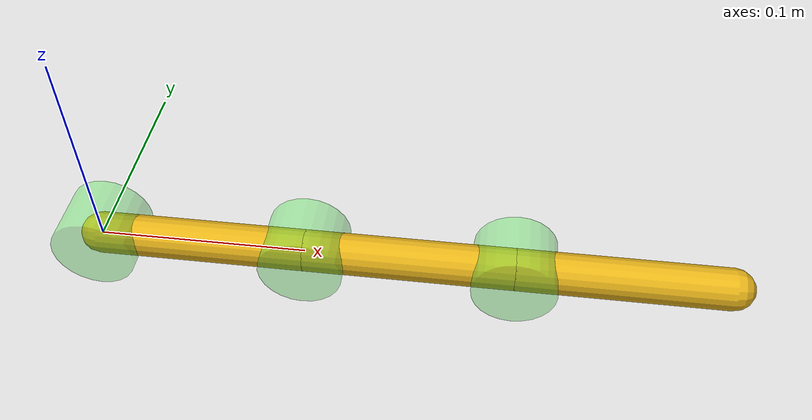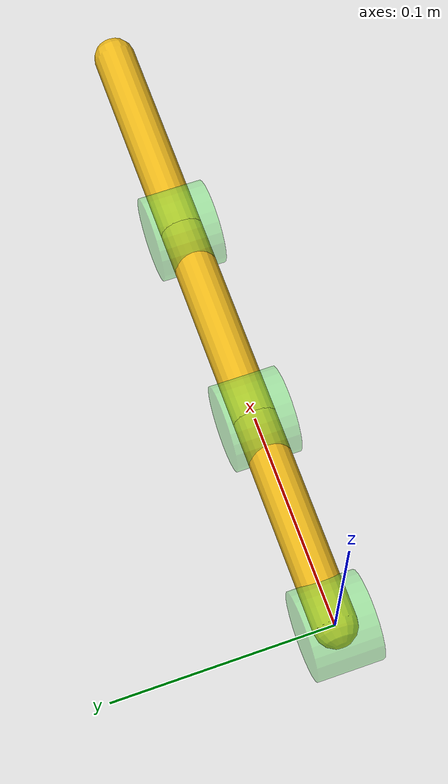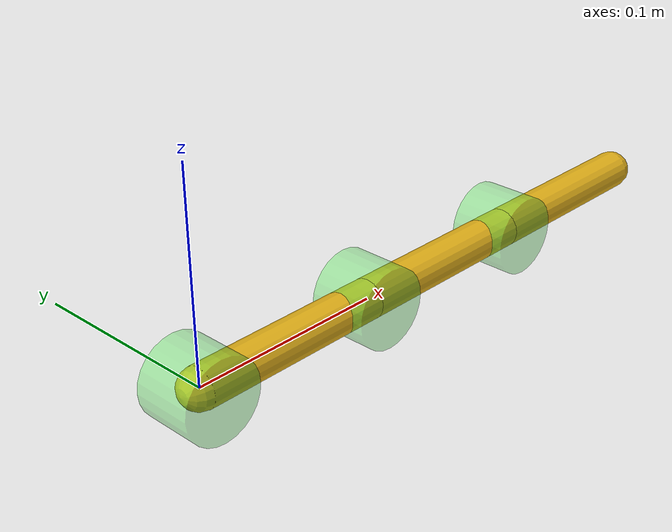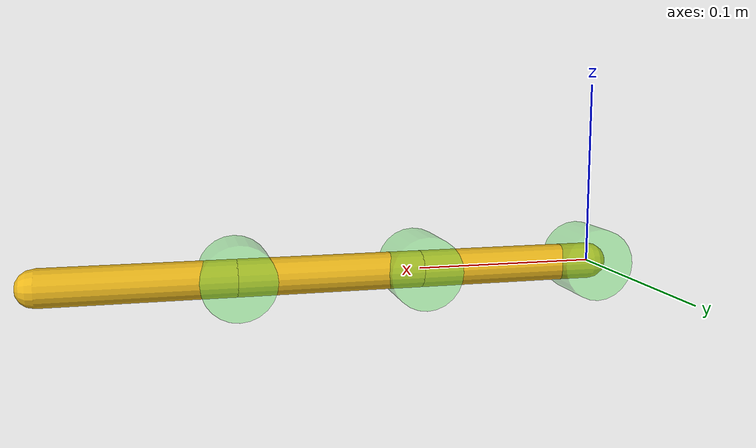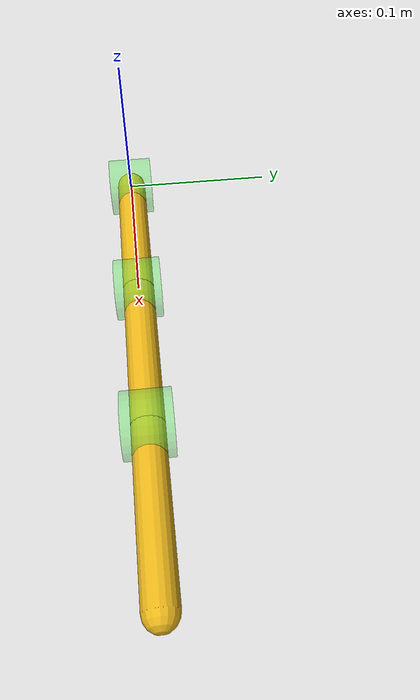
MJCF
<mujoco model="3-joint-planar-manipulator">
    <option timestep = "0.000001"/>
    <default>
        <joint axis="0 1 0"/>
        <geom type="capsule" size=".01" rgba=".9 .7 .1 1"/>
        <default class="visual_cylinder">
            <geom type="cylinder" fromto="0 .015 0 0 -.015 0" size=".02" rgba=".3 .9 .3 .4"/>
        </default>
    </default>
    <worldbody>
        <light pos="0 0 1"/>
        <body name = 'l1' pos="0 0 0">
            <joint name = 'q1' damping = '0.005'/>
            <geom name="g1" class="visual_cylinder"/>
            <geom name = 'l1' fromto="0 0 0 .1 0 0"/>
            <body name = 'l2' pos=".1 0 0">
                <joint name = 'q2' damping = '0.005'/>
                <geom name="g2" class="visual_cylinder"/>
                <geom name = 'l2' fromto="0 0 0 .1 0 0"/>
                <body name = 'l3' pos=".1 0 0">
                    <joint name = 'q3' damping = '0.005'/>
                    <geom name="g3" class="visual_cylinder"/>
                    <geom name = 'l3' fromto="0 0 0 .1 0 0"/>
                </body>
            </body>
        </body>
    </worldbody>

    <actuator>
		<position name="pos_q1" joint="q1" ctrllimited="true" ctrlrange="-3.14 3.14" kp="200" kv="1"/>
		<position name="pos_q2" joint="q2" ctrllimited="true" ctrlrange="-3.14 3.14" kp="200" kv="1"/>
		<position name="pos_q3" joint="q3" ctrllimited="true" ctrlrange="-3.14 3.14" kp="200" kv="1"/>
    </actuator>
</mujoco>
